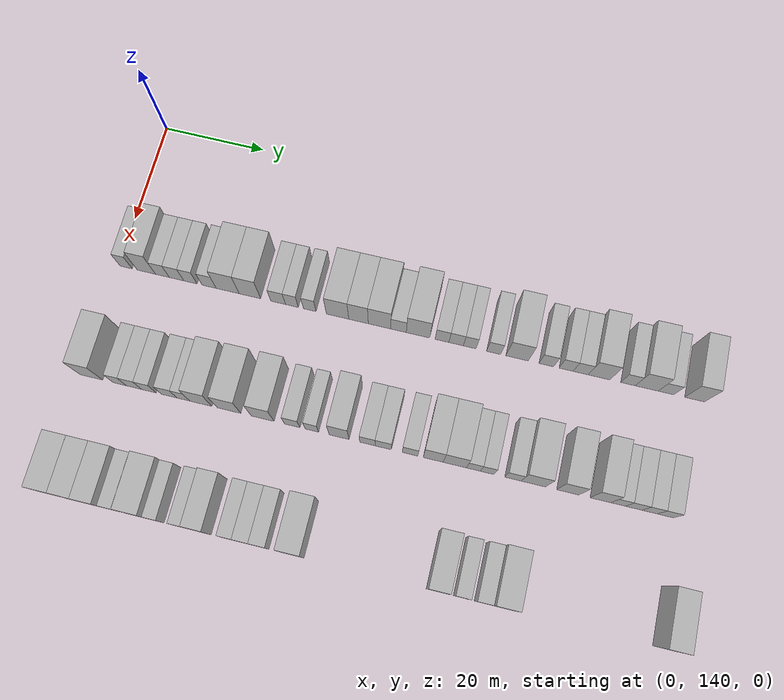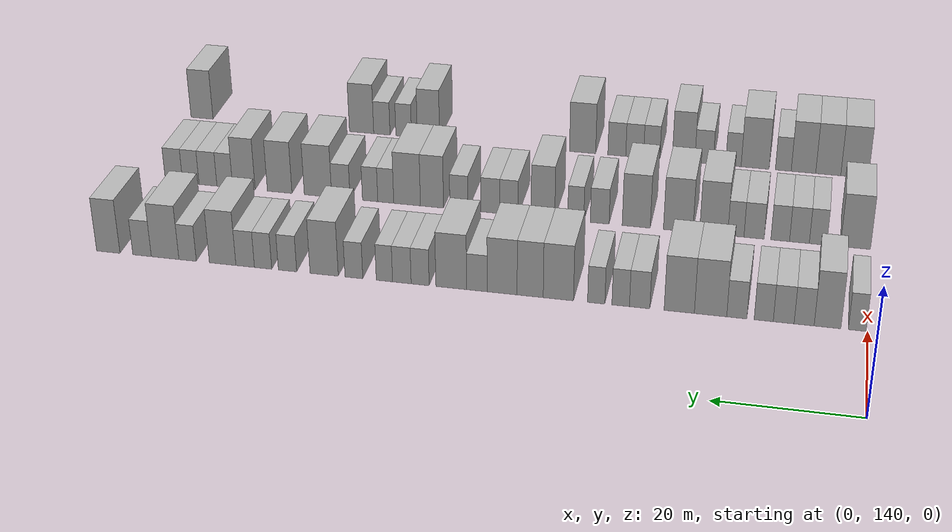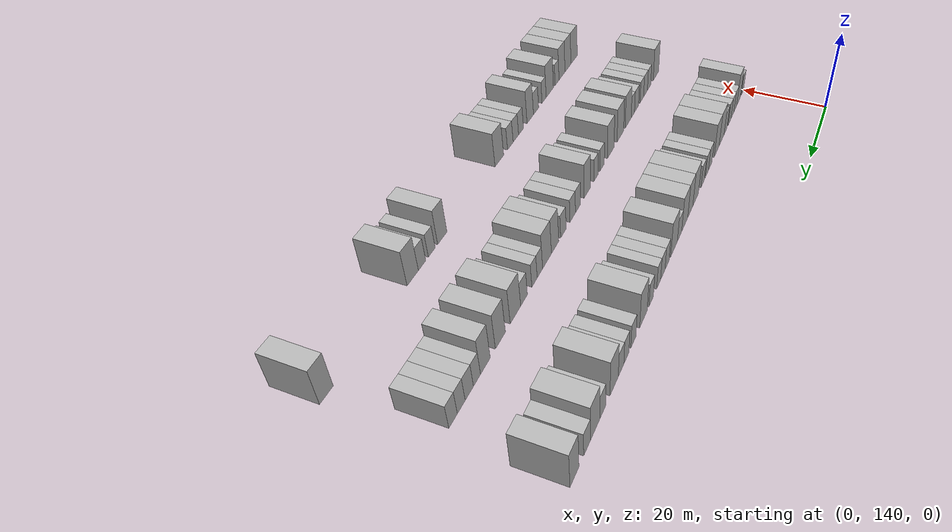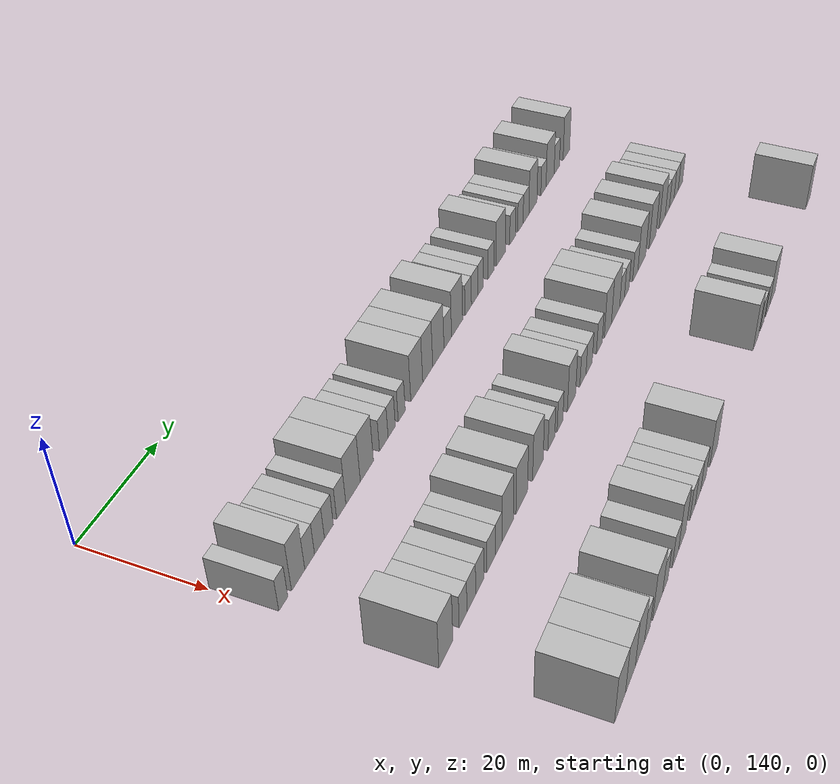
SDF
<sdf version="1.6">
 <world name="default">
  <model name="building_96">
   <static>1</static>
   <pose>25.0000 141.4545 0 0.000000 0.000000 0.000000</pose>
   <link name="link">
    <pose>0 0 3.00 0 0 0</pose>
    <collision name="collision"><geometry><box><size>10.0000 2.4067 6.0000</size></box></geometry></collision>
    <visual name="visual">
     <cast_shadows>0</cast_shadows>
     <geometry><box><size>10.0000 2.4067 6.0000</size></box></geometry>
     <material>
      <script>
       <uri>model://HANNAS_wall/materials/scripts</uri>
       <uri>model://HANNAS_wall/materials/textures</uri>
       <name>vrc/HANNAS_wall</name>
      </script>
     </material>
    </visual>
   </link>
  </model>
  <model name="building_97">
   <static>1</static>
   <pose>25.0000 145.4750 0 0.000000 0.000000 0.000000</pose>
   <link name="link">
    <pose>0 0 4.50 0 0 0</pose>
    <collision name="collision"><geometry><box><size>10.0000 3.6343 9.0000</size></box></geometry></collision>
    <visual name="visual">
     <cast_shadows>0</cast_shadows>
     <geometry><box><size>10.0000 3.6343 9.0000</size></box></geometry>
     <material>
      <script>
       <uri>model://HANNAS_wall/materials/scripts</uri>
       <uri>model://HANNAS_wall/materials/textures</uri>
       <name>vrc/HANNAS_wall</name>
      </script>
     </material>
    </visual>
   </link>
  </model>
  <model name="building_98">
   <static>1</static>
   <pose>25.0000 148.6591 0 0.000000 0.000000 0.000000</pose>
   <link name="link">
    <pose>0 0 3.00 0 0 0</pose>
    <collision name="collision"><geometry><box><size>10.0000 2.7338 6.0000</size></box></geometry></collision>
    <visual name="visual">
     <cast_shadows>0</cast_shadows>
     <geometry><box><size>10.0000 2.7338 6.0000</size></box></geometry>
     <material>
      <script>
       <uri>model://HANNAS_wall/materials/scripts</uri>
       <uri>model://HANNAS_wall/materials/textures</uri>
       <name>vrc/HANNAS_wall</name>
      </script>
     </material>
    </visual>
   </link>
  </model>
  <model name="building_99">
   <static>1</static>
   <pose>25.0000 151.4532 0 0.000000 0.000000 0.000000</pose>
   <link name="link">
    <pose>0 0 3.00 0 0 0</pose>
    <collision name="collision"><geometry><box><size>10.0000 2.8546 6.0000</size></box></geometry></collision>
    <visual name="visual">
     <cast_shadows>0</cast_shadows>
     <geometry><box><size>10.0000 2.8546 6.0000</size></box></geometry>
     <material>
      <script>
       <uri>model://HANNAS_wall/materials/scripts</uri>
       <uri>model://HANNAS_wall/materials/textures</uri>
       <name>vrc/HANNAS_wall</name>
      </script>
     </material>
    </visual>
   </link>
  </model>
  <model name="building_100">
   <static>1</static>
   <pose>25.0000 154.1930 0 0.000000 0.000000 0.000000</pose>
   <link name="link">
    <pose>0 0 3.00 0 0 0</pose>
    <collision name="collision"><geometry><box><size>10.0000 2.6249 6.0000</size></box></geometry></collision>
    <visual name="visual">
     <cast_shadows>0</cast_shadows>
     <geometry><box><size>10.0000 2.6249 6.0000</size></box></geometry>
     <material>
      <script>
       <uri>model://HANNAS_wall/materials/scripts</uri>
       <uri>model://HANNAS_wall/materials/textures</uri>
       <name>vrc/HANNAS_wall</name>
      </script>
     </material>
    </visual>
   </link>
  </model>
  <model name="building_101">
   <static>1</static>
   <pose>25.0000 157.8955 0 0.000000 0.000000 0.000000</pose>
   <link name="link">
    <pose>0 0 3.00 0 0 0</pose>
    <collision name="collision"><geometry><box><size>10.0000 2.7802 6.0000</size></box></geometry></collision>
    <visual name="visual">
     <cast_shadows>0</cast_shadows>
     <geometry><box><size>10.0000 2.7802 6.0000</size></box></geometry>
     <material>
      <script>
       <uri>model://HANNAS_wall/materials/scripts</uri>
       <uri>model://HANNAS_wall/materials/textures</uri>
       <name>vrc/HANNAS_wall</name>
      </script>
     </material>
    </visual>
   </link>
  </model>
  <model name="building_102">
   <static>1</static>
   <pose>25.0000 161.5338 0 0.000000 0.000000 0.000000</pose>
   <link name="link">
    <pose>0 0 4.50 0 0 0</pose>
    <collision name="collision"><geometry><box><size>10.0000 4.4964 9.0000</size></box></geometry></collision>
    <visual name="visual">
     <cast_shadows>0</cast_shadows>
     <geometry><box><size>10.0000 4.4964 9.0000</size></box></geometry>
     <material>
      <script>
       <uri>model://HANNAS_wall/materials/scripts</uri>
       <uri>model://HANNAS_wall/materials/textures</uri>
       <name>vrc/HANNAS_wall</name>
      </script>
     </material>
    </visual>
   </link>
  </model>
  <model name="building_103">
   <static>1</static>
   <pose>25.0000 165.8931 0 0.000000 0.000000 0.000000</pose>
   <link name="link">
    <pose>0 0 4.50 0 0 0</pose>
    <collision name="collision"><geometry><box><size>10.0000 4.2223 9.0000</size></box></geometry></collision>
    <visual name="visual">
     <cast_shadows>0</cast_shadows>
     <geometry><box><size>10.0000 4.2223 9.0000</size></box></geometry>
     <material>
      <script>
       <uri>model://HANNAS_wall/materials/scripts</uri>
       <uri>model://HANNAS_wall/materials/textures</uri>
       <name>vrc/HANNAS_wall</name>
      </script>
     </material>
    </visual>
   </link>
  </model>
  <model name="building_104">
   <static>1</static>
   <pose>25.0000 171.4389 0 0.000000 0.000000 0.000000</pose>
   <link name="link">
    <pose>0 0 3.00 0 0 0</pose>
    <collision name="collision"><geometry><box><size>10.0000 2.8694 6.0000</size></box></geometry></collision>
    <visual name="visual">
     <cast_shadows>0</cast_shadows>
     <geometry><box><size>10.0000 2.8694 6.0000</size></box></geometry>
     <material>
      <script>
       <uri>model://HANNAS_wall/materials/scripts</uri>
       <uri>model://HANNAS_wall/materials/textures</uri>
       <name>vrc/HANNAS_wall</name>
      </script>
     </material>
    </visual>
   </link>
  </model>
  <model name="building_105">
   <static>1</static>
   <pose>25.0000 174.1112 0 0.000000 0.000000 0.000000</pose>
   <link name="link">
    <pose>0 0 3.00 0 0 0</pose>
    <collision name="collision"><geometry><box><size>10.0000 2.4751 6.0000</size></box></geometry></collision>
    <visual name="visual">
     <cast_shadows>0</cast_shadows>
     <geometry><box><size>10.0000 2.4751 6.0000</size></box></geometry>
     <material>
      <script>
       <uri>model://HANNAS_wall/materials/scripts</uri>
       <uri>model://HANNAS_wall/materials/textures</uri>
       <name>vrc/HANNAS_wall</name>
      </script>
     </material>
    </visual>
   </link>
  </model>
  <model name="building_106">
   <static>1</static>
   <pose>25.0000 177.5749 0 0.000000 0.000000 0.000000</pose>
   <link name="link">
    <pose>0 0 3.00 0 0 0</pose>
    <collision name="collision"><geometry><box><size>10.0000 2.4523 6.0000</size></box></geometry></collision>
    <visual name="visual">
     <cast_shadows>0</cast_shadows>
     <geometry><box><size>10.0000 2.4523 6.0000</size></box></geometry>
     <material>
      <script>
       <uri>model://HANNAS_wall/materials/scripts</uri>
       <uri>model://HANNAS_wall/materials/textures</uri>
       <name>vrc/HANNAS_wall</name>
      </script>
     </material>
    </visual>
   </link>
  </model>
  <model name="building_107">
   <static>1</static>
   <pose>25.0000 182.9665 0 0.000000 0.000000 0.000000</pose>
   <link name="link">
    <pose>0 0 4.50 0 0 0</pose>
    <collision name="collision"><geometry><box><size>10.0000 4.3310 9.0000</size></box></geometry></collision>
    <visual name="visual">
     <cast_shadows>0</cast_shadows>
     <geometry><box><size>10.0000 4.3310 9.0000</size></box></geometry>
     <material>
      <script>
       <uri>model://HANNAS_wall/materials/scripts</uri>
       <uri>model://HANNAS_wall/materials/textures</uri>
       <name>vrc/HANNAS_wall</name>
      </script>
     </material>
    </visual>
   </link>
  </model>
  <model name="building_108">
   <static>1</static>
   <pose>25.0000 187.0088 0 0.000000 0.000000 0.000000</pose>
   <link name="link">
    <pose>0 0 4.50 0 0 0</pose>
    <collision name="collision"><geometry><box><size>10.0000 3.7535 9.0000</size></box></geometry></collision>
    <visual name="visual">
     <cast_shadows>0</cast_shadows>
     <geometry><box><size>10.0000 3.7535 9.0000</size></box></geometry>
     <material>
      <script>
       <uri>model://HANNAS_wall/materials/scripts</uri>
       <uri>model://HANNAS_wall/materials/textures</uri>
       <name>vrc/HANNAS_wall</name>
      </script>
     </material>
    </visual>
   </link>
  </model>
  <model name="building_109">
   <static>1</static>
   <pose>25.0000 191.0441 0 0.000000 0.000000 0.000000</pose>
   <link name="link">
    <pose>0 0 4.50 0 0 0</pose>
    <collision name="collision"><geometry><box><size>10.0000 4.3172 9.0000</size></box></geometry></collision>
    <visual name="visual">
     <cast_shadows>0</cast_shadows>
     <geometry><box><size>10.0000 4.3172 9.0000</size></box></geometry>
     <material>
      <script>
       <uri>model://HANNAS_wall/materials/scripts</uri>
       <uri>model://HANNAS_wall/materials/textures</uri>
       <name>vrc/HANNAS_wall</name>
      </script>
     </material>
    </visual>
   </link>
  </model>
  <model name="building_110">
   <static>1</static>
   <pose>25.0000 194.6917 0 0.000000 0.000000 0.000000</pose>
   <link name="link">
    <pose>0 0 3.00 0 0 0</pose>
    <collision name="collision"><geometry><box><size>10.0000 2.9779 6.0000</size></box></geometry></collision>
    <visual name="visual">
     <cast_shadows>0</cast_shadows>
     <geometry><box><size>10.0000 2.9779 6.0000</size></box></geometry>
     <material>
      <script>
       <uri>model://HANNAS_wall/materials/scripts</uri>
       <uri>model://HANNAS_wall/materials/textures</uri>
       <name>vrc/HANNAS_wall</name>
      </script>
     </material>
    </visual>
   </link>
  </model>
  <model name="building_111">
   <static>1</static>
   <pose>25.0000 198.4226 0 0.000000 0.000000 0.000000</pose>
   <link name="link">
    <pose>0 0 4.50 0 0 0</pose>
    <collision name="collision"><geometry><box><size>10.0000 4.4841 9.0000</size></box></geometry></collision>
    <visual name="visual">
     <cast_shadows>0</cast_shadows>
     <geometry><box><size>10.0000 4.4841 9.0000</size></box></geometry>
     <material>
      <script>
       <uri>model://HANNAS_wall/materials/scripts</uri>
       <uri>model://HANNAS_wall/materials/textures</uri>
       <name>vrc/HANNAS_wall</name>
      </script>
     </material>
    </visual>
   </link>
  </model>
  <model name="building_112">
   <static>1</static>
   <pose>25.0000 202.9848 0 0.000000 0.000000 0.000000</pose>
   <link name="link">
    <pose>0 0 3.00 0 0 0</pose>
    <collision name="collision"><geometry><box><size>10.0000 2.6403 6.0000</size></box></geometry></collision>
    <visual name="visual">
     <cast_shadows>0</cast_shadows>
     <geometry><box><size>10.0000 2.6403 6.0000</size></box></geometry>
     <material>
      <script>
       <uri>model://HANNAS_wall/materials/scripts</uri>
       <uri>model://HANNAS_wall/materials/textures</uri>
       <name>vrc/HANNAS_wall</name>
      </script>
     </material>
    </visual>
   </link>
  </model>
  <model name="building_113">
   <static>1</static>
   <pose>25.0000 205.6736 0 0.000000 0.000000 0.000000</pose>
   <link name="link">
    <pose>0 0 3.00 0 0 0</pose>
    <collision name="collision"><geometry><box><size>10.0000 2.7373 6.0000</size></box></geometry></collision>
    <visual name="visual">
     <cast_shadows>0</cast_shadows>
     <geometry><box><size>10.0000 2.7373 6.0000</size></box></geometry>
     <material>
      <script>
       <uri>model://HANNAS_wall/materials/scripts</uri>
       <uri>model://HANNAS_wall/materials/textures</uri>
       <name>vrc/HANNAS_wall</name>
      </script>
     </material>
    </visual>
   </link>
  </model>
  <model name="building_114">
   <static>1</static>
   <pose>25.0000 208.2463 0 0.000000 0.000000 0.000000</pose>
   <link name="link">
    <pose>0 0 3.00 0 0 0</pose>
    <collision name="collision"><geometry><box><size>10.0000 2.4081 6.0000</size></box></geometry></collision>
    <visual name="visual">
     <cast_shadows>0</cast_shadows>
     <geometry><box><size>10.0000 2.4081 6.0000</size></box></geometry>
     <material>
      <script>
       <uri>model://HANNAS_wall/materials/scripts</uri>
       <uri>model://HANNAS_wall/materials/textures</uri>
       <name>vrc/HANNAS_wall</name>
      </script>
     </material>
    </visual>
   </link>
  </model>
  <model name="building_115">
   <static>1</static>
   <pose>25.0000 212.7727 0 0.000000 0.000000 0.000000</pose>
   <link name="link">
    <pose>0 0 3.00 0 0 0</pose>
    <collision name="collision"><geometry><box><size>10.0000 2.6446 6.0000</size></box></geometry></collision>
    <visual name="visual">
     <cast_shadows>0</cast_shadows>
     <geometry><box><size>10.0000 2.6446 6.0000</size></box></geometry>
     <material>
      <script>
       <uri>model://HANNAS_wall/materials/scripts</uri>
       <uri>model://HANNAS_wall/materials/textures</uri>
       <name>vrc/HANNAS_wall</name>
      </script>
     </material>
    </visual>
   </link>
  </model>
  <model name="building_116">
   <static>1</static>
   <pose>25.0000 217.2119 0 0.000000 0.000000 0.000000</pose>
   <link name="link">
    <pose>0 0 4.50 0 0 0</pose>
    <collision name="collision"><geometry><box><size>10.0000 4.2339 9.0000</size></box></geometry></collision>
    <visual name="visual">
     <cast_shadows>0</cast_shadows>
     <geometry><box><size>10.0000 4.2339 9.0000</size></box></geometry>
     <material>
      <script>
       <uri>model://HANNAS_wall/materials/scripts</uri>
       <uri>model://HANNAS_wall/materials/textures</uri>
       <name>vrc/HANNAS_wall</name>
      </script>
     </material>
    </visual>
   </link>
  </model>
  <model name="building_117">
   <static>1</static>
   <pose>25.0000 222.7109 0 0.000000 0.000000 0.000000</pose>
   <link name="link">
    <pose>0 0 3.00 0 0 0</pose>
    <collision name="collision"><geometry><box><size>10.0000 2.7641 6.0000</size></box></geometry></collision>
    <visual name="visual">
     <cast_shadows>0</cast_shadows>
     <geometry><box><size>10.0000 2.7641 6.0000</size></box></geometry>
     <material>
      <script>
       <uri>model://HANNAS_wall/materials/scripts</uri>
       <uri>model://HANNAS_wall/materials/textures</uri>
       <name>vrc/HANNAS_wall</name>
      </script>
     </material>
    </visual>
   </link>
  </model>
  <model name="building_118">
   <static>1</static>
   <pose>25.0000 226.4050 0 0.000000 0.000000 0.000000</pose>
   <link name="link">
    <pose>0 0 3.00 0 0 0</pose>
    <collision name="collision"><geometry><box><size>10.0000 2.6240 6.0000</size></box></geometry></collision>
    <visual name="visual">
     <cast_shadows>0</cast_shadows>
     <geometry><box><size>10.0000 2.6240 6.0000</size></box></geometry>
     <material>
      <script>
       <uri>model://HANNAS_wall/materials/scripts</uri>
       <uri>model://HANNAS_wall/materials/textures</uri>
       <name>vrc/HANNAS_wall</name>
      </script>
     </material>
    </visual>
   </link>
  </model>
  <model name="building_119">
   <static>1</static>
   <pose>25.0000 229.1265 0 0.000000 0.000000 0.000000</pose>
   <link name="link">
    <pose>0 0 3.00 0 0 0</pose>
    <collision name="collision"><geometry><box><size>10.0000 2.8189 6.0000</size></box></geometry></collision>
    <visual name="visual">
     <cast_shadows>0</cast_shadows>
     <geometry><box><size>10.0000 2.8189 6.0000</size></box></geometry>
     <material>
      <script>
       <uri>model://HANNAS_wall/materials/scripts</uri>
       <uri>model://HANNAS_wall/materials/textures</uri>
       <name>vrc/HANNAS_wall</name>
      </script>
     </material>
    </visual>
   </link>
  </model>
  <model name="building_120">
   <static>1</static>
   <pose>25.0000 232.5615 0 0.000000 0.000000 0.000000</pose>
   <link name="link">
    <pose>0 0 4.50 0 0 0</pose>
    <collision name="collision"><geometry><box><size>10.0000 4.0511 9.0000</size></box></geometry></collision>
    <visual name="visual">
     <cast_shadows>0</cast_shadows>
     <geometry><box><size>10.0000 4.0511 9.0000</size></box></geometry>
     <material>
      <script>
       <uri>model://HANNAS_wall/materials/scripts</uri>
       <uri>model://HANNAS_wall/materials/textures</uri>
       <name>vrc/HANNAS_wall</name>
      </script>
     </material>
    </visual>
   </link>
  </model>
  <model name="building_121">
   <static>1</static>
   <pose>25.0000 237.9276 0 0.000000 0.000000 0.000000</pose>
   <link name="link">
    <pose>0 0 3.00 0 0 0</pose>
    <collision name="collision"><geometry><box><size>10.0000 2.6811 6.0000</size></box></geometry></collision>
    <visual name="visual">
     <cast_shadows>0</cast_shadows>
     <geometry><box><size>10.0000 2.6811 6.0000</size></box></geometry>
     <material>
      <script>
       <uri>model://HANNAS_wall/materials/scripts</uri>
       <uri>model://HANNAS_wall/materials/textures</uri>
       <name>vrc/HANNAS_wall</name>
      </script>
     </material>
    </visual>
   </link>
  </model>
  <model name="building_122">
   <static>1</static>
   <pose>25.0000 241.3985 0 0.000000 0.000000 0.000000</pose>
   <link name="link">
    <pose>0 0 4.50 0 0 0</pose>
    <collision name="collision"><geometry><box><size>10.0000 4.2606 9.0000</size></box></geometry></collision>
    <visual name="visual">
     <cast_shadows>0</cast_shadows>
     <geometry><box><size>10.0000 4.2606 9.0000</size></box></geometry>
     <material>
      <script>
       <uri>model://HANNAS_wall/materials/scripts</uri>
       <uri>model://HANNAS_wall/materials/textures</uri>
       <name>vrc/HANNAS_wall</name>
      </script>
     </material>
    </visual>
   </link>
  </model>
  <model name="building_123">
   <static>1</static>
   <pose>25.0000 244.9622 0 0.000000 0.000000 0.000000</pose>
   <link name="link">
    <pose>0 0 3.00 0 0 0</pose>
    <collision name="collision"><geometry><box><size>10.0000 2.8668 6.0000</size></box></geometry></collision>
    <visual name="visual">
     <cast_shadows>0</cast_shadows>
     <geometry><box><size>10.0000 2.8668 6.0000</size></box></geometry>
     <material>
      <script>
       <uri>model://HANNAS_wall/materials/scripts</uri>
       <uri>model://HANNAS_wall/materials/textures</uri>
       <name>vrc/HANNAS_wall</name>
      </script>
     </material>
    </visual>
   </link>
  </model>
  <model name="building_124">
   <static>1</static>
   <pose>25.0000 250.2155 0 0.000000 0.000000 0.000000</pose>
   <link name="link">
    <pose>0 0 4.50 0 0 0</pose>
    <collision name="collision"><geometry><box><size>10.0000 3.6399 9.0000</size></box></geometry></collision>
    <visual name="visual">
     <cast_shadows>0</cast_shadows>
     <geometry><box><size>10.0000 3.6399 9.0000</size></box></geometry>
     <material>
      <script>
       <uri>model://HANNAS_wall/materials/scripts</uri>
       <uri>model://HANNAS_wall/materials/textures</uri>
       <name>vrc/HANNAS_wall</name>
      </script>
     </material>
    </visual>
   </link>
  </model>
  <model name="building_225">
   <static>1</static>
   <pose>47.0000 141.9700 0 0.000000 0.000000 0.000000</pose>
   <link name="link">
    <pose>0 0 4.50 0 0 0</pose>
    <collision name="collision"><geometry><box><size>10.0000 4.3853 9.0000</size></box></geometry></collision>
    <visual name="visual">
     <cast_shadows>0</cast_shadows>
     <geometry><box><size>10.0000 4.3853 9.0000</size></box></geometry>
     <material>
      <script>
       <uri>model://HANNAS_wall/materials/scripts</uri>
       <uri>model://HANNAS_wall/materials/textures</uri>
       <name>vrc/HANNAS_wall</name>
      </script>
     </material>
    </visual>
   </link>
  </model>
  <model name="building_226">
   <static>1</static>
   <pose>47.0000 147.4454 0 0.000000 0.000000 0.000000</pose>
   <link name="link">
    <pose>0 0 3.00 0 0 0</pose>
    <collision name="collision"><geometry><box><size>10.0000 2.5656 6.0000</size></box></geometry></collision>
    <visual name="visual">
     <cast_shadows>0</cast_shadows>
     <geometry><box><size>10.0000 2.5656 6.0000</size></box></geometry>
     <material>
      <script>
       <uri>model://HANNAS_wall/materials/scripts</uri>
       <uri>model://HANNAS_wall/materials/textures</uri>
       <name>vrc/HANNAS_wall</name>
      </script>
     </material>
    </visual>
   </link>
  </model>
  <model name="building_227">
   <static>1</static>
   <pose>47.0000 150.1865 0 0.000000 0.000000 0.000000</pose>
   <link name="link">
    <pose>0 0 3.00 0 0 0</pose>
    <collision name="collision"><geometry><box><size>10.0000 2.9166 6.0000</size></box></geometry></collision>
    <visual name="visual">
     <cast_shadows>0</cast_shadows>
     <geometry><box><size>10.0000 2.9166 6.0000</size></box></geometry>
     <material>
      <script>
       <uri>model://HANNAS_wall/materials/scripts</uri>
       <uri>model://HANNAS_wall/materials/textures</uri>
       <name>vrc/HANNAS_wall</name>
      </script>
     </material>
    </visual>
   </link>
  </model>
  <model name="building_228">
   <static>1</static>
   <pose>47.0000 153.0256 0 0.000000 0.000000 0.000000</pose>
   <link name="link">
    <pose>0 0 3.00 0 0 0</pose>
    <collision name="collision"><geometry><box><size>10.0000 2.7614 6.0000</size></box></geometry></collision>
    <visual name="visual">
     <cast_shadows>0</cast_shadows>
     <geometry><box><size>10.0000 2.7614 6.0000</size></box></geometry>
     <material>
      <script>
       <uri>model://HANNAS_wall/materials/scripts</uri>
       <uri>model://HANNAS_wall/materials/textures</uri>
       <name>vrc/HANNAS_wall</name>
      </script>
     </material>
    </visual>
   </link>
  </model>
  <model name="building_229">
   <static>1</static>
   <pose>47.0000 156.9061 0 0.000000 0.000000 0.000000</pose>
   <link name="link">
    <pose>0 0 3.00 0 0 0</pose>
    <collision name="collision"><geometry><box><size>10.0000 2.9998 6.0000</size></box></geometry></collision>
    <visual name="visual">
     <cast_shadows>0</cast_shadows>
     <geometry><box><size>10.0000 2.9998 6.0000</size></box></geometry>
     <material>
      <script>
       <uri>model://HANNAS_wall/materials/scripts</uri>
       <uri>model://HANNAS_wall/materials/textures</uri>
       <name>vrc/HANNAS_wall</name>
      </script>
     </material>
    </visual>
   </link>
  </model>
  <model name="building_230">
   <static>1</static>
   <pose>47.0000 159.6132 0 0.000000 0.000000 0.000000</pose>
   <link name="link">
    <pose>0 0 3.00 0 0 0</pose>
    <collision name="collision"><geometry><box><size>10.0000 2.4143 6.0000</size></box></geometry></collision>
    <visual name="visual">
     <cast_shadows>0</cast_shadows>
     <geometry><box><size>10.0000 2.4143 6.0000</size></box></geometry>
     <material>
      <script>
       <uri>model://HANNAS_wall/materials/scripts</uri>
       <uri>model://HANNAS_wall/materials/textures</uri>
       <name>vrc/HANNAS_wall</name>
      </script>
     </material>
    </visual>
   </link>
  </model>
  <model name="building_231">
   <static>1</static>
   <pose>47.0000 162.9348 0 0.000000 0.000000 0.000000</pose>
   <link name="link">
    <pose>0 0 4.50 0 0 0</pose>
    <collision name="collision"><geometry><box><size>10.0000 4.2290 9.0000</size></box></geometry></collision>
    <visual name="visual">
     <cast_shadows>0</cast_shadows>
     <geometry><box><size>10.0000 4.2290 9.0000</size></box></geometry>
     <material>
      <script>
       <uri>model://HANNAS_wall/materials/scripts</uri>
       <uri>model://HANNAS_wall/materials/textures</uri>
       <name>vrc/HANNAS_wall</name>
      </script>
     </material>
    </visual>
   </link>
  </model>
  <model name="building_232">
   <static>1</static>
   <pose>47.0000 168.2725 0 0.000000 0.000000 0.000000</pose>
   <link name="link">
    <pose>0 0 4.50 0 0 0</pose>
    <collision name="collision"><geometry><box><size>10.0000 4.4463 9.0000</size></box></geometry></collision>
    <visual name="visual">
     <cast_shadows>0</cast_shadows>
     <geometry><box><size>10.0000 4.4463 9.0000</size></box></geometry>
     <material>
      <script>
       <uri>model://HANNAS_wall/materials/scripts</uri>
       <uri>model://HANNAS_wall/materials/textures</uri>
       <name>vrc/HANNAS_wall</name>
      </script>
     </material>
    </visual>
   </link>
  </model>
  <model name="building_233">
   <static>1</static>
   <pose>47.0000 174.6285 0 0.000000 0.000000 0.000000</pose>
   <link name="link">
    <pose>0 0 4.50 0 0 0</pose>
    <collision name="collision"><geometry><box><size>10.0000 4.2658 9.0000</size></box></geometry></collision>
    <visual name="visual">
     <cast_shadows>0</cast_shadows>
     <geometry><box><size>10.0000 4.2658 9.0000</size></box></geometry>
     <material>
      <script>
       <uri>model://HANNAS_wall/materials/scripts</uri>
       <uri>model://HANNAS_wall/materials/textures</uri>
       <name>vrc/HANNAS_wall</name>
      </script>
     </material>
    </visual>
   </link>
  </model>
  <model name="building_234">
   <static>1</static>
   <pose>47.0000 180.1979 0 0.000000 0.000000 0.000000</pose>
   <link name="link">
    <pose>0 0 3.00 0 0 0</pose>
    <collision name="collision"><geometry><box><size>10.0000 2.8730 6.0000</size></box></geometry></collision>
    <visual name="visual">
     <cast_shadows>0</cast_shadows>
     <geometry><box><size>10.0000 2.8730 6.0000</size></box></geometry>
     <material>
      <script>
       <uri>model://HANNAS_wall/materials/scripts</uri>
       <uri>model://HANNAS_wall/materials/textures</uri>
       <name>vrc/HANNAS_wall</name>
      </script>
     </material>
    </visual>
   </link>
  </model>
  <model name="building_235">
   <static>1</static>
   <pose>47.0000 183.8692 0 0.000000 0.000000 0.000000</pose>
   <link name="link">
    <pose>0 0 3.00 0 0 0</pose>
    <collision name="collision"><geometry><box><size>10.0000 2.4695 6.0000</size></box></geometry></collision>
    <visual name="visual">
     <cast_shadows>0</cast_shadows>
     <geometry><box><size>10.0000 2.4695 6.0000</size></box></geometry>
     <material>
      <script>
       <uri>model://HANNAS_wall/materials/scripts</uri>
       <uri>model://HANNAS_wall/materials/textures</uri>
       <name>vrc/HANNAS_wall</name>
      </script>
     </material>
    </visual>
   </link>
  </model>
  <model name="building_236">
   <static>1</static>
   <pose>47.0000 188.9405 0 0.000000 0.000000 0.000000</pose>
   <link name="link">
    <pose>0 0 4.50 0 0 0</pose>
    <collision name="collision"><geometry><box><size>10.0000 3.6731 9.0000</size></box></geometry></collision>
    <visual name="visual">
     <cast_shadows>0</cast_shadows>
     <geometry><box><size>10.0000 3.6731 9.0000</size></box></geometry>
     <material>
      <script>
       <uri>model://HANNAS_wall/materials/scripts</uri>
       <uri>model://HANNAS_wall/materials/textures</uri>
       <name>vrc/HANNAS_wall</name>
      </script>
     </material>
    </visual>
   </link>
  </model>
  <model name="building_237">
   <static>1</static>
   <pose>47.0000 194.2044 0 0.000000 0.000000 0.000000</pose>
   <link name="link">
    <pose>0 0 3.00 0 0 0</pose>
    <collision name="collision"><geometry><box><size>10.0000 2.8547 6.0000</size></box></geometry></collision>
    <visual name="visual">
     <cast_shadows>0</cast_shadows>
     <geometry><box><size>10.0000 2.8547 6.0000</size></box></geometry>
     <material>
      <script>
       <uri>model://HANNAS_wall/materials/scripts</uri>
       <uri>model://HANNAS_wall/materials/textures</uri>
       <name>vrc/HANNAS_wall</name>
      </script>
     </material>
    </visual>
   </link>
  </model>
  <model name="building_238">
   <static>1</static>
   <pose>47.0000 197.1253 0 0.000000 0.000000 0.000000</pose>
   <link name="link">
    <pose>0 0 3.00 0 0 0</pose>
    <collision name="collision"><geometry><box><size>10.0000 2.9872 6.0000</size></box></geometry></collision>
    <visual name="visual">
     <cast_shadows>0</cast_shadows>
     <geometry><box><size>10.0000 2.9872 6.0000</size></box></geometry>
     <material>
      <script>
       <uri>model://HANNAS_wall/materials/scripts</uri>
       <uri>model://HANNAS_wall/materials/textures</uri>
       <name>vrc/HANNAS_wall</name>
      </script>
     </material>
    </visual>
   </link>
  </model>
  <model name="building_239">
   <static>1</static>
   <pose>47.0000 202.0454 0 0.000000 0.000000 0.000000</pose>
   <link name="link">
    <pose>0 0 3.00 0 0 0</pose>
    <collision name="collision"><geometry><box><size>10.0000 2.8529 6.0000</size></box></geometry></collision>
    <visual name="visual">
     <cast_shadows>0</cast_shadows>
     <geometry><box><size>10.0000 2.8529 6.0000</size></box></geometry>
     <material>
      <script>
       <uri>model://HANNAS_wall/materials/scripts</uri>
       <uri>model://HANNAS_wall/materials/textures</uri>
       <name>vrc/HANNAS_wall</name>
      </script>
     </material>
    </visual>
   </link>
  </model>
  <model name="building_240">
   <static>1</static>
   <pose>47.0000 206.2983 0 0.000000 0.000000 0.000000</pose>
   <link name="link">
    <pose>0 0 4.50 0 0 0</pose>
    <collision name="collision"><geometry><box><size>10.0000 3.6530 9.0000</size></box></geometry></collision>
    <visual name="visual">
     <cast_shadows>0</cast_shadows>
     <geometry><box><size>10.0000 3.6530 9.0000</size></box></geometry>
     <material>
      <script>
       <uri>model://HANNAS_wall/materials/scripts</uri>
       <uri>model://HANNAS_wall/materials/textures</uri>
       <name>vrc/HANNAS_wall</name>
      </script>
     </material>
    </visual>
   </link>
  </model>
  <model name="building_241">
   <static>1</static>
   <pose>47.0000 210.2507 0 0.000000 0.000000 0.000000</pose>
   <link name="link">
    <pose>0 0 4.50 0 0 0</pose>
    <collision name="collision"><geometry><box><size>10.0000 4.2517 9.0000</size></box></geometry></collision>
    <visual name="visual">
     <cast_shadows>0</cast_shadows>
     <geometry><box><size>10.0000 4.2517 9.0000</size></box></geometry>
     <material>
      <script>
       <uri>model://HANNAS_wall/materials/scripts</uri>
       <uri>model://HANNAS_wall/materials/textures</uri>
       <name>vrc/HANNAS_wall</name>
      </script>
     </material>
    </visual>
   </link>
  </model>
  <model name="building_242">
   <static>1</static>
   <pose>47.0000 213.6481 0 0.000000 0.000000 0.000000</pose>
   <link name="link">
    <pose>0 0 3.00 0 0 0</pose>
    <collision name="collision"><geometry><box><size>10.0000 2.5431 6.0000</size></box></geometry></collision>
    <visual name="visual">
     <cast_shadows>0</cast_shadows>
     <geometry><box><size>10.0000 2.5431 6.0000</size></box></geometry>
     <material>
      <script>
       <uri>model://HANNAS_wall/materials/scripts</uri>
       <uri>model://HANNAS_wall/materials/textures</uri>
       <name>vrc/HANNAS_wall</name>
      </script>
     </material>
    </visual>
   </link>
  </model>
  <model name="building_243">
   <static>1</static>
   <pose>47.0000 216.1459 0 0.000000 0.000000 0.000000</pose>
   <link name="link">
    <pose>0 0 3.00 0 0 0</pose>
    <collision name="collision"><geometry><box><size>10.0000 2.4525 6.0000</size></box></geometry></collision>
    <visual name="visual">
     <cast_shadows>0</cast_shadows>
     <geometry><box><size>10.0000 2.4525 6.0000</size></box></geometry>
     <material>
      <script>
       <uri>model://HANNAS_wall/materials/scripts</uri>
       <uri>model://HANNAS_wall/materials/textures</uri>
       <name>vrc/HANNAS_wall</name>
      </script>
     </material>
    </visual>
   </link>
  </model>
  <model name="building_244">
   <static>1</static>
   <pose>47.0000 220.8478 0 0.000000 0.000000 0.000000</pose>
   <link name="link">
    <pose>0 0 3.00 0 0 0</pose>
    <collision name="collision"><geometry><box><size>10.0000 2.9514 6.0000</size></box></geometry></collision>
    <visual name="visual">
     <cast_shadows>0</cast_shadows>
     <geometry><box><size>10.0000 2.9514 6.0000</size></box></geometry>
     <material>
      <script>
       <uri>model://HANNAS_wall/materials/scripts</uri>
       <uri>model://HANNAS_wall/materials/textures</uri>
       <name>vrc/HANNAS_wall</name>
      </script>
     </material>
    </visual>
   </link>
  </model>
  <model name="building_245">
   <static>1</static>
   <pose>47.0000 224.5428 0 0.000000 0.000000 0.000000</pose>
   <link name="link">
    <pose>0 0 4.50 0 0 0</pose>
    <collision name="collision"><geometry><box><size>10.0000 4.4386 9.0000</size></box></geometry></collision>
    <visual name="visual">
     <cast_shadows>0</cast_shadows>
     <geometry><box><size>10.0000 4.4386 9.0000</size></box></geometry>
     <material>
      <script>
       <uri>model://HANNAS_wall/materials/scripts</uri>
       <uri>model://HANNAS_wall/materials/textures</uri>
       <name>vrc/HANNAS_wall</name>
      </script>
     </material>
    </visual>
   </link>
  </model>
  <model name="building_246">
   <static>1</static>
   <pose>47.0000 230.7696 0 0.000000 0.000000 0.000000</pose>
   <link name="link">
    <pose>0 0 4.50 0 0 0</pose>
    <collision name="collision"><geometry><box><size>10.0000 4.0150 9.0000</size></box></geometry></collision>
    <visual name="visual">
     <cast_shadows>0</cast_shadows>
     <geometry><box><size>10.0000 4.0150 9.0000</size></box></geometry>
     <material>
      <script>
       <uri>model://HANNAS_wall/materials/scripts</uri>
       <uri>model://HANNAS_wall/materials/textures</uri>
       <name>vrc/HANNAS_wall</name>
      </script>
     </material>
    </visual>
   </link>
  </model>
  <model name="building_247">
   <static>1</static>
   <pose>47.0000 236.6250 0 0.000000 0.000000 0.000000</pose>
   <link name="link">
    <pose>0 0 4.50 0 0 0</pose>
    <collision name="collision"><geometry><box><size>10.0000 3.6958 9.0000</size></box></geometry></collision>
    <visual name="visual">
     <cast_shadows>0</cast_shadows>
     <geometry><box><size>10.0000 3.6958 9.0000</size></box></geometry>
     <material>
      <script>
       <uri>model://HANNAS_wall/materials/scripts</uri>
       <uri>model://HANNAS_wall/materials/textures</uri>
       <name>vrc/HANNAS_wall</name>
      </script>
     </material>
    </visual>
   </link>
  </model>
  <model name="building_248">
   <static>1</static>
   <pose>47.0000 239.7693 0 0.000000 0.000000 0.000000</pose>
   <link name="link">
    <pose>0 0 3.00 0 0 0</pose>
    <collision name="collision"><geometry><box><size>10.0000 2.5929 6.0000</size></box></geometry></collision>
    <visual name="visual">
     <cast_shadows>0</cast_shadows>
     <geometry><box><size>10.0000 2.5929 6.0000</size></box></geometry>
     <material>
      <script>
       <uri>model://HANNAS_wall/materials/scripts</uri>
       <uri>model://HANNAS_wall/materials/textures</uri>
       <name>vrc/HANNAS_wall</name>
      </script>
     </material>
    </visual>
   </link>
  </model>
  <model name="building_249">
   <static>1</static>
   <pose>47.0000 242.5412 0 0.000000 0.000000 0.000000</pose>
   <link name="link">
    <pose>0 0 3.00 0 0 0</pose>
    <collision name="collision"><geometry><box><size>10.0000 2.9508 6.0000</size></box></geometry></collision>
    <visual name="visual">
     <cast_shadows>0</cast_shadows>
     <geometry><box><size>10.0000 2.9508 6.0000</size></box></geometry>
     <material>
      <script>
       <uri>model://HANNAS_wall/materials/scripts</uri>
       <uri>model://HANNAS_wall/materials/textures</uri>
       <name>vrc/HANNAS_wall</name>
      </script>
     </material>
    </visual>
   </link>
  </model>
  <model name="building_250">
   <static>1</static>
   <pose>47.0000 245.3782 0 0.000000 0.000000 0.000000</pose>
   <link name="link">
    <pose>0 0 3.00 0 0 0</pose>
    <collision name="collision"><geometry><box><size>10.0000 2.7232 6.0000</size></box></geometry></collision>
    <visual name="visual">
     <cast_shadows>0</cast_shadows>
     <geometry><box><size>10.0000 2.7232 6.0000</size></box></geometry>
     <material>
      <script>
       <uri>model://HANNAS_wall/materials/scripts</uri>
       <uri>model://HANNAS_wall/materials/textures</uri>
       <name>vrc/HANNAS_wall</name>
      </script>
     </material>
    </visual>
   </link>
  </model>
  <model name="building_251">
   <static>1</static>
   <pose>47.0000 248.1744 0 0.000000 0.000000 0.000000</pose>
   <link name="link">
    <pose>0 0 3.00 0 0 0</pose>
    <collision name="collision"><geometry><box><size>10.0000 2.8693 6.0000</size></box></geometry></collision>
    <visual name="visual">
     <cast_shadows>0</cast_shadows>
     <geometry><box><size>10.0000 2.8693 6.0000</size></box></geometry>
     <material>
      <script>
       <uri>model://HANNAS_wall/materials/scripts</uri>
       <uri>model://HANNAS_wall/materials/textures</uri>
       <name>vrc/HANNAS_wall</name>
      </script>
     </material>
    </visual>
   </link>
  </model>
  <model name="building_351">
   <static>1</static>
   <pose>69.0000 142.3785 0 0.000000 0.000000 0.000000</pose>
   <link name="link">
    <pose>0 0 4.50 0 0 0</pose>
    <collision name="collision"><geometry><box><size>10.0000 4.3355 9.0000</size></box></geometry></collision>
    <visual name="visual">
     <cast_shadows>0</cast_shadows>
     <geometry><box><size>10.0000 4.3355 9.0000</size></box></geometry>
     <material>
      <script>
       <uri>model://HANNAS_wall/materials/scripts</uri>
       <uri>model://HANNAS_wall/materials/textures</uri>
       <name>vrc/HANNAS_wall</name>
      </script>
     </material>
    </visual>
   </link>
  </model>
  <model name="building_352">
   <static>1</static>
   <pose>69.0000 146.5225 0 0.000000 0.000000 0.000000</pose>
   <link name="link">
    <pose>0 0 4.50 0 0 0</pose>
    <collision name="collision"><geometry><box><size>10.0000 3.9524 9.0000</size></box></geometry></collision>
    <visual name="visual">
     <cast_shadows>0</cast_shadows>
     <geometry><box><size>10.0000 3.9524 9.0000</size></box></geometry>
     <material>
      <script>
       <uri>model://HANNAS_wall/materials/scripts</uri>
       <uri>model://HANNAS_wall/materials/textures</uri>
       <name>vrc/HANNAS_wall</name>
      </script>
     </material>
    </visual>
   </link>
  </model>
  <model name="building_353">
   <static>1</static>
   <pose>69.0000 150.4366 0 0.000000 0.000000 0.000000</pose>
   <link name="link">
    <pose>0 0 4.50 0 0 0</pose>
    <collision name="collision"><geometry><box><size>10.0000 3.8758 9.0000</size></box></geometry></collision>
    <visual name="visual">
     <cast_shadows>0</cast_shadows>
     <geometry><box><size>10.0000 3.8758 9.0000</size></box></geometry>
     <material>
      <script>
       <uri>model://HANNAS_wall/materials/scripts</uri>
       <uri>model://HANNAS_wall/materials/textures</uri>
       <name>vrc/HANNAS_wall</name>
      </script>
     </material>
    </visual>
   </link>
  </model>
  <model name="building_354">
   <static>1</static>
   <pose>69.0000 153.6307 0 0.000000 0.000000 0.000000</pose>
   <link name="link">
    <pose>0 0 3.00 0 0 0</pose>
    <collision name="collision"><geometry><box><size>10.0000 2.5124 6.0000</size></box></geometry></collision>
    <visual name="visual">
     <cast_shadows>0</cast_shadows>
     <geometry><box><size>10.0000 2.5124 6.0000</size></box></geometry>
     <material>
      <script>
       <uri>model://HANNAS_wall/materials/scripts</uri>
       <uri>model://HANNAS_wall/materials/textures</uri>
       <name>vrc/HANNAS_wall</name>
      </script>
     </material>
    </visual>
   </link>
  </model>
  <model name="building_355">
   <static>1</static>
   <pose>69.0000 158.1215 0 0.000000 0.000000 0.000000</pose>
   <link name="link">
    <pose>0 0 4.50 0 0 0</pose>
    <collision name="collision"><geometry><box><size>10.0000 4.4692 9.0000</size></box></geometry></collision>
    <visual name="visual">
     <cast_shadows>0</cast_shadows>
     <geometry><box><size>10.0000 4.4692 9.0000</size></box></geometry>
     <material>
      <script>
       <uri>model://HANNAS_wall/materials/scripts</uri>
       <uri>model://HANNAS_wall/materials/textures</uri>
       <name>vrc/HANNAS_wall</name>
      </script>
     </material>
    </visual>
   </link>
  </model>
  <model name="building_356">
   <static>1</static>
   <pose>69.0000 161.6020 0 0.000000 0.000000 0.000000</pose>
   <link name="link">
    <pose>0 0 3.00 0 0 0</pose>
    <collision name="collision"><geometry><box><size>10.0000 2.4919 6.0000</size></box></geometry></collision>
    <visual name="visual">
     <cast_shadows>0</cast_shadows>
     <geometry><box><size>10.0000 2.4919 6.0000</size></box></geometry>
     <material>
      <script>
       <uri>model://HANNAS_wall/materials/scripts</uri>
       <uri>model://HANNAS_wall/materials/textures</uri>
       <name>vrc/HANNAS_wall</name>
      </script>
     </material>
    </visual>
   </link>
  </model>
  <model name="building_357">
   <static>1</static>
   <pose>69.0000 166.3296 0 0.000000 0.000000 0.000000</pose>
   <link name="link">
    <pose>0 0 3.00 0 0 0</pose>
    <collision name="collision"><geometry><box><size>10.0000 2.9632 6.0000</size></box></geometry></collision>
    <visual name="visual">
     <cast_shadows>0</cast_shadows>
     <geometry><box><size>10.0000 2.9632 6.0000</size></box></geometry>
     <material>
      <script>
       <uri>model://HANNAS_wall/materials/scripts</uri>
       <uri>model://HANNAS_wall/materials/textures</uri>
       <name>vrc/HANNAS_wall</name>
      </script>
     </material>
    </visual>
   </link>
  </model>
  <model name="building_358">
   <static>1</static>
   <pose>69.0000 169.6411 0 0.000000 0.000000 0.000000</pose>
   <link name="link">
    <pose>0 0 4.50 0 0 0</pose>
    <collision name="collision"><geometry><box><size>10.0000 3.6600 9.0000</size></box></geometry></collision>
    <visual name="visual">
     <cast_shadows>0</cast_shadows>
     <geometry><box><size>10.0000 3.6600 9.0000</size></box></geometry>
     <material>
      <script>
       <uri>model://HANNAS_wall/materials/scripts</uri>
       <uri>model://HANNAS_wall/materials/textures</uri>
       <name>vrc/HANNAS_wall</name>
      </script>
     </material>
    </visual>
   </link>
  </model>
  <model name="building_359">
   <static>1</static>
   <pose>69.0000 174.8010 0 0.000000 0.000000 0.000000</pose>
   <link name="link">
    <pose>0 0 3.00 0 0 0</pose>
    <collision name="collision"><geometry><box><size>10.0000 2.6599 6.0000</size></box></geometry></collision>
    <visual name="visual">
     <cast_shadows>0</cast_shadows>
     <geometry><box><size>10.0000 2.6599 6.0000</size></box></geometry>
     <material>
      <script>
       <uri>model://HANNAS_wall/materials/scripts</uri>
       <uri>model://HANNAS_wall/materials/textures</uri>
       <name>vrc/HANNAS_wall</name>
      </script>
     </material>
    </visual>
   </link>
  </model>
  <model name="building_360">
   <static>1</static>
   <pose>69.0000 177.5833 0 0.000000 0.000000 0.000000</pose>
   <link name="link">
    <pose>0 0 3.00 0 0 0</pose>
    <collision name="collision"><geometry><box><size>10.0000 2.9048 6.0000</size></box></geometry></collision>
    <visual name="visual">
     <cast_shadows>0</cast_shadows>
     <geometry><box><size>10.0000 2.9048 6.0000</size></box></geometry>
     <material>
      <script>
       <uri>model://HANNAS_wall/materials/scripts</uri>
       <uri>model://HANNAS_wall/materials/textures</uri>
       <name>vrc/HANNAS_wall</name>
      </script>
     </material>
    </visual>
   </link>
  </model>
  <model name="building_361">
   <static>1</static>
   <pose>69.0000 180.5029 0 0.000000 0.000000 0.000000</pose>
   <link name="link">
    <pose>0 0 3.00 0 0 0</pose>
    <collision name="collision"><geometry><box><size>10.0000 2.9344 6.0000</size></box></geometry></collision>
    <visual name="visual">
     <cast_shadows>0</cast_shadows>
     <geometry><box><size>10.0000 2.9344 6.0000</size></box></geometry>
     <material>
      <script>
       <uri>model://HANNAS_wall/materials/scripts</uri>
       <uri>model://HANNAS_wall/materials/textures</uri>
       <name>vrc/HANNAS_wall</name>
      </script>
     </material>
    </visual>
   </link>
  </model>
  <model name="building_362">
   <static>1</static>
   <pose>69.0000 186.1308 0 0.000000 0.000000 0.000000</pose>
   <link name="link">
    <pose>0 0 4.50 0 0 0</pose>
    <collision name="collision"><geometry><box><size>10.0000 4.3214 9.0000</size></box></geometry></collision>
    <visual name="visual">
     <cast_shadows>0</cast_shadows>
     <geometry><box><size>10.0000 4.3214 9.0000</size></box></geometry>
     <material>
      <script>
       <uri>model://HANNAS_wall/materials/scripts</uri>
       <uri>model://HANNAS_wall/materials/textures</uri>
       <name>vrc/HANNAS_wall</name>
      </script>
     </material>
    </visual>
   </link>
  </model>
  <model name="building_363">
   <static>1</static>
   <pose>69.0000 211.9598 0 0.000000 0.000000 0.000000</pose>
   <link name="link">
    <pose>0 0 4.50 0 0 0</pose>
    <collision name="collision"><geometry><box><size>10.0000 3.7789 9.0000</size></box></geometry></collision>
    <visual name="visual">
     <cast_shadows>0</cast_shadows>
     <geometry><box><size>10.0000 3.7789 9.0000</size></box></geometry>
     <material>
      <script>
       <uri>model://HANNAS_wall/materials/scripts</uri>
       <uri>model://HANNAS_wall/materials/textures</uri>
       <name>vrc/HANNAS_wall</name>
      </script>
     </material>
    </visual>
   </link>
  </model>
  <model name="building_364">
   <static>1</static>
   <pose>69.0000 216.1859 0 0.000000 0.000000 0.000000</pose>
   <link name="link">
    <pose>0 0 3.00 0 0 0</pose>
    <collision name="collision"><geometry><box><size>10.0000 2.6733 6.0000</size></box></geometry></collision>
    <visual name="visual">
     <cast_shadows>0</cast_shadows>
     <geometry><box><size>10.0000 2.6733 6.0000</size></box></geometry>
     <material>
      <script>
       <uri>model://HANNAS_wall/materials/scripts</uri>
       <uri>model://HANNAS_wall/materials/textures</uri>
       <name>vrc/HANNAS_wall</name>
      </script>
     </material>
    </visual>
   </link>
  </model>
  <model name="building_365">
   <static>1</static>
   <pose>69.0000 219.9189 0 0.000000 0.000000 0.000000</pose>
   <link name="link">
    <pose>0 0 3.00 0 0 0</pose>
    <collision name="collision"><geometry><box><size>10.0000 2.7927 6.0000</size></box></geometry></collision>
    <visual name="visual">
     <cast_shadows>0</cast_shadows>
     <geometry><box><size>10.0000 2.7927 6.0000</size></box></geometry>
     <material>
      <script>
       <uri>model://HANNAS_wall/materials/scripts</uri>
       <uri>model://HANNAS_wall/materials/textures</uri>
       <name>vrc/HANNAS_wall</name>
      </script>
     </material>
    </visual>
   </link>
  </model>
  <model name="building_366">
   <static>1</static>
   <pose>69.0000 223.4068 0 0.000000 0.000000 0.000000</pose>
   <link name="link">
    <pose>0 0 4.50 0 0 0</pose>
    <collision name="collision"><geometry><box><size>10.0000 4.1832 9.0000</size></box></geometry></collision>
    <visual name="visual">
     <cast_shadows>0</cast_shadows>
     <geometry><box><size>10.0000 4.1832 9.0000</size></box></geometry>
     <material>
      <script>
       <uri>model://HANNAS_wall/materials/scripts</uri>
       <uri>model://HANNAS_wall/materials/textures</uri>
       <name>vrc/HANNAS_wall</name>
      </script>
     </material>
    </visual>
   </link>
  </model>
  <model name="building_367">
   <static>1</static>
   <pose>69.0000 251.3510 0 0.000000 0.000000 0.000000</pose>
   <link name="link">
    <pose>0 0 4.50 0 0 0</pose>
    <collision name="collision"><geometry><box><size>10.0000 3.9017 9.0000</size></box></geometry></collision>
    <visual name="visual">
     <cast_shadows>0</cast_shadows>
     <geometry><box><size>10.0000 3.9017 9.0000</size></box></geometry>
     <material>
      <script>
       <uri>model://HANNAS_wall/materials/scripts</uri>
       <uri>model://HANNAS_wall/materials/textures</uri>
       <name>vrc/HANNAS_wall</name>
      </script>
     </material>
    </visual>
   </link>
  </model>
 </world>
</sdf>
